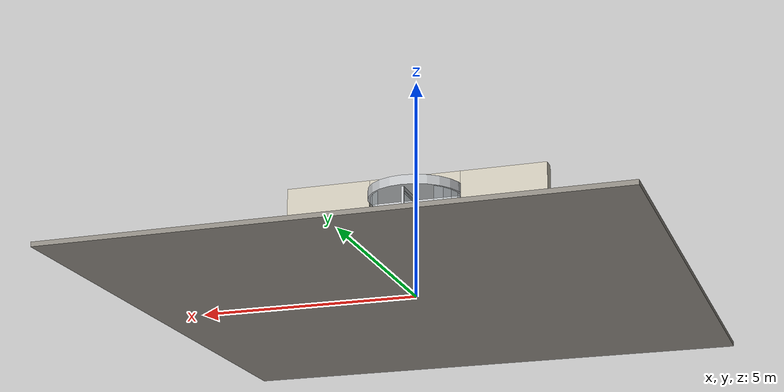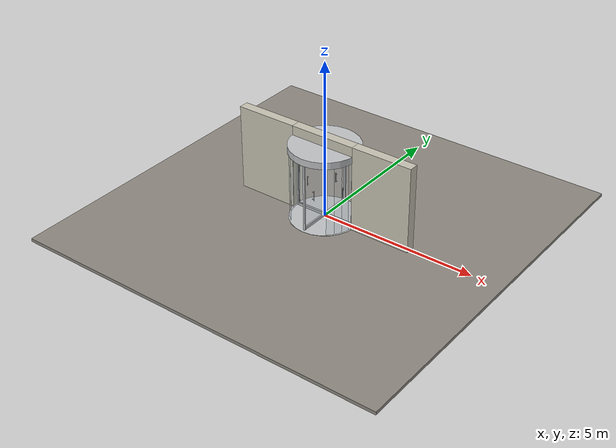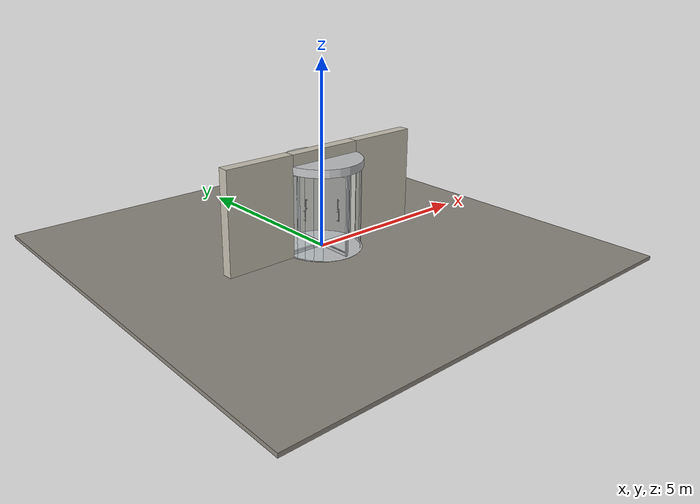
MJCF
<?xml version="1.0" ?>
<mujoco model="db0958_revolving_full">
  <compiler angle="radian" meshdir="../../hardware" texturedir="../../textures" autolimits="true" inertiafromgeom="false"/>
  <option timestep="0.002" integrator="implicitfast" cone="elliptic" impratio="10" noslip_iterations="3">
    <flag multiccd="enable"/>
  </option>
  <size memory="16M"/>
  <default>
    <geom condim="4" solref="0.005 1" solimp="0.95 0.99 0.001"/>
    <joint solreflimit="0.005 1" solimplimit="0.95 0.99 0.001"/>
    <tendon solreflimit="0.005 1"/>
    <equality solref="0.002 1"/>
  </default>
  <visual>
    <headlight ambient="0.4 0.4 0.4" diffuse="0.7 0.7 0.7" specular="0.2 0.2 0.2"/>
    <quality shadowsize="4096"/>
    <map znear="0.01" zfar="60"/>
  </visual>
  <asset>
    <material name="mat_floor" rgba="0.55 0.53 0.5 1" specular="0.2" shininess="0.15" reflectance="0"/>
    <material name="mat_wall" rgba="0.78 0.76 0.7 1" specular="0.2" shininess="0.1" reflectance="0"/>
    <material name="mat_frame" rgba="0.75 0.76 0.77 1" specular="0.8" shininess="0.65" reflectance="0.4"/>
    <material name="mat_drum_glass" rgba="0.85 0.92 0.95 0.25" specular="0.2" shininess="0.95" reflectance="0.1"/>
    <material name="mat_floor_ring" rgba="0.75 0.76 0.77 1" specular="0.8" shininess="0.65" reflectance="0.4"/>
    <material name="mat_op_stainless" rgba="0.75 0.76 0.77 1" specular="0.8" shininess="0.65" reflectance="0.4"/>
    <texture name="skybox" type="skybox" builtin="gradient" rgb1="0.6 0.7 0.85" rgb2="0.9 0.92 0.95" width="256" height="256"/>
  </asset>
  <worldbody>
    <light name="sun" pos="1.5 -2.5 4" dir="-0.3 0.5 -0.8" directional="true" diffuse="0.8 0.8 0.8" specular="0.3 0.3 0.3" castshadow="true"/>
    <light name="fill" pos="-1.5 2.5 3" dir="0.3 -0.5 -0.7" directional="true" diffuse="0.35 0.35 0.4" castshadow="false"/>
    <camera name="robot_view" pos="0 -2.906875 2.030925" xyaxes="1 0 0 0 0.26963 0.962964" fovy="52"/>
    <camera name="far_view" pos="0 2.906875 2.030925" xyaxes="-1 0 0 0 -0.26963 0.962964" fovy="52"/>
    <camera name="iso" pos="2.209225 -2.441775 2.496025" xyaxes="0.741536 0.670913 0 -0.242917 0.268487 0.932151" fovy="46"/>
    <camera name="detail_handle" pos="0.55 -1.1 1.35" xyaxes="0.975133 0.221621 0 -0.065674 0.288965 0.955084" fovy="38"/>
    <geom name="floor" type="box" size="6 6 0.05" pos="0 0 -0.05" material="mat_floor" group="0" contype="1" conaffinity="1" friction="0.8 0.005 0.0001" density="2400"/>
    <geom name="wall_left" type="box" size="0.975 0.15 1.367" pos="-2.025 0 1.367" material="mat_wall" group="0" contype="1" conaffinity="1" friction="0.6 0.005 0.0001" density="800"/>
    <geom name="wall_right" type="box" size="0.975 0.15 1.367" pos="2.025 0 1.367" material="mat_wall" group="0" contype="1" conaffinity="1" friction="0.6 0.005 0.0001" density="800"/>
    <geom name="wall_header" type="box" size="1.05 0.15 0.15" pos="0 0 2.584" material="mat_wall" group="0" contype="1" conaffinity="1" friction="0.6 0.005 0.0001" density="800"/>
    <geom name="drum_0" type="box" size="0.116444 0.006 1.1095" pos="1.013586 0.114204 1.1095" quat="0.666347 0 0 0.745642" material="mat_drum_glass" group="0" contype="1" conaffinity="1" friction="0.6 0.005 0.0001" density="2500"/>
    <geom name="drum_1" type="box" size="0.116444 0.006 1.1095" pos="0.962761 0.336885 1.1095" quat="0.578671 0 0 0.815561" material="mat_drum_glass" group="0" contype="1" conaffinity="1" friction="0.6 0.005 0.0001" density="2500"/>
    <geom name="drum_2" type="box" size="0.116444 0.006 1.1095" pos="0.863659 0.542673 1.1095" quat="0.483719 0 0 0.875223" material="mat_drum_glass" group="0" contype="1" conaffinity="1" friction="0.6 0.005 0.0001" density="2500"/>
    <geom name="drum_3" type="box" size="0.116444 0.006 1.1095" pos="0.721249 0.721249 1.1095" quat="0.382683 0 0 0.92388" material="mat_drum_glass" group="0" contype="1" conaffinity="1" friction="0.6 0.005 0.0001" density="2500"/>
    <geom name="drum_10" type="box" size="0.116444 0.006 1.1095" pos="-0.721249 0.721249 1.1095" quat="-0.382683 0 0 0.92388" material="mat_drum_glass" group="0" contype="1" conaffinity="1" friction="0.6 0.005 0.0001" density="2500"/>
    <geom name="drum_11" type="box" size="0.116444 0.006 1.1095" pos="-0.863659 0.542673 1.1095" quat="-0.483719 0 0 0.875223" material="mat_drum_glass" group="0" contype="1" conaffinity="1" friction="0.6 0.005 0.0001" density="2500"/>
    <geom name="drum_12" type="box" size="0.116444 0.006 1.1095" pos="-0.962761 0.336885 1.1095" quat="-0.578671 0 0 0.815561" material="mat_drum_glass" group="0" contype="1" conaffinity="1" friction="0.6 0.005 0.0001" density="2500"/>
    <geom name="drum_13" type="box" size="0.116444 0.006 1.1095" pos="-1.013586 0.114204 1.1095" quat="-0.666347 0 0 0.745642" material="mat_drum_glass" group="0" contype="1" conaffinity="1" friction="0.6 0.005 0.0001" density="2500"/>
    <geom name="drum_14" type="box" size="0.116444 0.006 1.1095" pos="-1.013586 -0.114204 1.1095" quat="-0.745642 0 0 0.666347" material="mat_drum_glass" group="0" contype="1" conaffinity="1" friction="0.6 0.005 0.0001" density="2500"/>
    <geom name="drum_15" type="box" size="0.116444 0.006 1.1095" pos="-0.962761 -0.336885 1.1095" quat="-0.815561 0 0 0.578671" material="mat_drum_glass" group="0" contype="1" conaffinity="1" friction="0.6 0.005 0.0001" density="2500"/>
    <geom name="drum_16" type="box" size="0.116444 0.006 1.1095" pos="-0.863659 -0.542673 1.1095" quat="-0.875223 0 0 0.483719" material="mat_drum_glass" group="0" contype="1" conaffinity="1" friction="0.6 0.005 0.0001" density="2500"/>
    <geom name="drum_17" type="box" size="0.116444 0.006 1.1095" pos="-0.721249 -0.721249 1.1095" quat="-0.92388 0 0 0.382683" material="mat_drum_glass" group="0" contype="1" conaffinity="1" friction="0.6 0.005 0.0001" density="2500"/>
    <geom name="drum_24" type="box" size="0.116444 0.006 1.1095" pos="0.721249 -0.721249 1.1095" quat="-0.92388 0 0 -0.382683" material="mat_drum_glass" group="0" contype="1" conaffinity="1" friction="0.6 0.005 0.0001" density="2500"/>
    <geom name="drum_25" type="box" size="0.116444 0.006 1.1095" pos="0.863659 -0.542673 1.1095" quat="-0.875223 0 0 -0.483719" material="mat_drum_glass" group="0" contype="1" conaffinity="1" friction="0.6 0.005 0.0001" density="2500"/>
    <geom name="drum_26" type="box" size="0.116444 0.006 1.1095" pos="0.962761 -0.336885 1.1095" quat="-0.815561 0 0 -0.578671" material="mat_drum_glass" group="0" contype="1" conaffinity="1" friction="0.6 0.005 0.0001" density="2500"/>
    <geom name="drum_27" type="box" size="0.116444 0.006 1.1095" pos="1.013586 -0.114204 1.1095" quat="-0.745642 0 0 -0.666347" material="mat_drum_glass" group="0" contype="1" conaffinity="1" friction="0.6 0.005 0.0001" density="2500"/>
    <geom name="drum_canopy" type="cylinder" size="1.08 0.1075" pos="0 0 2.3265" material="mat_frame" group="0" contype="1" conaffinity="1" friction="0.6 0.005 0.0001" density="300"/>
    <geom name="rotor_top_bearing" type="cylinder" size="0.075 0.003" pos="0 0 2.216" material="mat_frame" group="0" contype="1" conaffinity="1" friction="0.6 0.005 0.0001" density="2700"/>
    <geom name="drum_floor_ring" type="cylinder" size="1.08 0.003" pos="0 0 0.003" material="mat_floor_ring" group="1" contype="0" conaffinity="0" density="7900"/>
    <geom name="rotor_floor_pivot" type="cylinder" size="0.075 0.003" pos="0 0 0.009" material="mat_frame" group="0" contype="1" conaffinity="1" friction="0.6 0.005 0.0001" density="2700"/>
    <site name="approach_point" pos="0 -2 0" quat="1 0 0 0" size="0.05" rgba="0.2 0.9 0.2 0.5" group="4"/>
    <site name="goal_point" pos="0 2 0" quat="1 0 0 0" size="0.05" rgba="0.2 0.9 0.2 0.5" group="4"/>
    <site name="door_plane_center" pos="0 0 1.067" quat="1 0 0 0" size="0.02" rgba="0.2 0.9 0.2 0.5" group="4"/>
    <body name="rotor" pos="0 0 0">
      <inertial pos="0 0 1.113153" mass="211.248" quat="0.707107 0 0.707107 0" diaginertia="74.829940809 147.996329414 147.996329414"/>
      <joint name="rotor_hinge" type="hinge" axis="0 0 1" limited="false" damping="28" frictionloss="4.611778" armature="0.5"/>
      <geom name="rotor_shaft" type="cylinder" size="0.06 1.092" pos="0 0 1.112" material="mat_frame" group="0" contype="1" conaffinity="1" friction="0.6 0.005 0.0001" density="2700"/>
      <geom name="rotor_pintle_b" type="cylinder" size="0.03 0.008" pos="0 0 0.016" material="mat_frame" group="1" contype="0" conaffinity="0" density="2700"/>
      <geom name="rotor_pintle_t" type="cylinder" size="0.03 0.0085" pos="0 0 2.2085" material="mat_frame" group="1" contype="0" conaffinity="0" density="2700"/>
      <geom name="wing_0_glass" type="box" size="0.48 0.005 1.017" pos="0.5 0 1.117" material="mat_drum_glass" group="0" contype="1" conaffinity="1" friction="0.6 0.005 0.0001" density="2500"/>
      <geom name="wing_0_stile" type="box" size="0.02 0.03 1.092" pos="0.98 0 1.112" material="mat_frame" group="0" contype="1" conaffinity="1" friction="0.6 0.005 0.0001" density="2700"/>
      <geom name="wing_0_rail_b" type="box" size="0.48 0.03 0.04" pos="0.48 0 0.06" material="mat_frame" group="0" contype="1" conaffinity="1" friction="0.6 0.005 0.0001" density="2700"/>
      <geom name="wing_0_rail_t" type="box" size="0.48 0.03 0.04" pos="0.48 0 2.164" material="mat_frame" group="0" contype="1" conaffinity="1" friction="0.6 0.005 0.0001" density="2700"/>
      <geom name="wing_0_bar" type="capsule" size="0.012 0.15" pos="0.6 0.055 1" material="mat_op_stainless" group="0" contype="1" conaffinity="1" friction="0.7 0.01 0.0001" density="7900"/>
      <geom name="wing_0_bar_stud_d" type="cylinder" size="0.009 0.028" pos="0.6 0.031 0.88" quat="0.707107 -0.707107 0 0" material="mat_op_stainless" group="1" contype="0" conaffinity="0" density="7900"/>
      <geom name="wing_0_bar_stud_u" type="cylinder" size="0.009 0.028" pos="0.6 0.031 1.12" quat="0.707107 -0.707107 0 0" material="mat_op_stainless" group="1" contype="0" conaffinity="0" density="7900"/>
      <geom name="wing_1_glass" type="box" size="0.48 0.005 1.017" pos="0 0.5 1.117" quat="0.707107 0 0 0.707107" material="mat_drum_glass" group="0" contype="1" conaffinity="1" friction="0.6 0.005 0.0001" density="2500"/>
      <geom name="wing_1_stile" type="box" size="0.02 0.03 1.092" pos="0 0.98 1.112" quat="0.707107 0 0 0.707107" material="mat_frame" group="0" contype="1" conaffinity="1" friction="0.6 0.005 0.0001" density="2700"/>
      <geom name="wing_1_rail_b" type="box" size="0.48 0.03 0.04" pos="0 0.48 0.06" quat="0.707107 0 0 0.707107" material="mat_frame" group="0" contype="1" conaffinity="1" friction="0.6 0.005 0.0001" density="2700"/>
      <geom name="wing_1_rail_t" type="box" size="0.48 0.03 0.04" pos="0 0.48 2.164" quat="0.707107 0 0 0.707107" material="mat_frame" group="0" contype="1" conaffinity="1" friction="0.6 0.005 0.0001" density="2700"/>
      <geom name="wing_1_bar" type="capsule" size="0.012 0.15" pos="-0.055 0.6 1" material="mat_op_stainless" group="0" contype="1" conaffinity="1" friction="0.7 0.01 0.0001" density="7900"/>
      <geom name="wing_1_bar_stud_d" type="cylinder" size="0.009 0.028" pos="-0.031 0.6 0.88" quat="0.707107 0 -0.707107 0" material="mat_op_stainless" group="1" contype="0" conaffinity="0" density="7900"/>
      <geom name="wing_1_bar_stud_u" type="cylinder" size="0.009 0.028" pos="-0.031 0.6 1.12" quat="0.707107 0 -0.707107 0" material="mat_op_stainless" group="1" contype="0" conaffinity="0" density="7900"/>
      <geom name="wing_2_glass" type="box" size="0.48 0.005 1.017" pos="-0.5 0 1.117" quat="0 0 0 1" material="mat_drum_glass" group="0" contype="1" conaffinity="1" friction="0.6 0.005 0.0001" density="2500"/>
      <geom name="wing_2_stile" type="box" size="0.02 0.03 1.092" pos="-0.98 0 1.112" quat="0 0 0 1" material="mat_frame" group="0" contype="1" conaffinity="1" friction="0.6 0.005 0.0001" density="2700"/>
      <geom name="wing_2_rail_b" type="box" size="0.48 0.03 0.04" pos="-0.48 0 0.06" quat="0 0 0 1" material="mat_frame" group="0" contype="1" conaffinity="1" friction="0.6 0.005 0.0001" density="2700"/>
      <geom name="wing_2_rail_t" type="box" size="0.48 0.03 0.04" pos="-0.48 0 2.164" quat="0 0 0 1" material="mat_frame" group="0" contype="1" conaffinity="1" friction="0.6 0.005 0.0001" density="2700"/>
      <geom name="wing_2_bar" type="capsule" size="0.012 0.15" pos="-0.6 -0.055 1" material="mat_op_stainless" group="0" contype="1" conaffinity="1" friction="0.7 0.01 0.0001" density="7900"/>
      <geom name="wing_2_bar_stud_d" type="cylinder" size="0.009 0.028" pos="-0.6 -0.031 0.88" quat="0.707107 0.707107 0 0" material="mat_op_stainless" group="1" contype="0" conaffinity="0" density="7900"/>
      <geom name="wing_2_bar_stud_u" type="cylinder" size="0.009 0.028" pos="-0.6 -0.031 1.12" quat="0.707107 0.707107 0 0" material="mat_op_stainless" group="1" contype="0" conaffinity="0" density="7900"/>
      <geom name="wing_3_glass" type="box" size="0.48 0.005 1.017" pos="0 -0.5 1.117" quat="-0.707107 0 0 0.707107" material="mat_drum_glass" group="0" contype="1" conaffinity="1" friction="0.6 0.005 0.0001" density="2500"/>
      <geom name="wing_3_stile" type="box" size="0.02 0.03 1.092" pos="0 -0.98 1.112" quat="-0.707107 0 0 0.707107" material="mat_frame" group="0" contype="1" conaffinity="1" friction="0.6 0.005 0.0001" density="2700"/>
      <geom name="wing_3_rail_b" type="box" size="0.48 0.03 0.04" pos="0 -0.48 0.06" quat="-0.707107 0 0 0.707107" material="mat_frame" group="0" contype="1" conaffinity="1" friction="0.6 0.005 0.0001" density="2700"/>
      <geom name="wing_3_rail_t" type="box" size="0.48 0.03 0.04" pos="0 -0.48 2.164" quat="-0.707107 0 0 0.707107" material="mat_frame" group="0" contype="1" conaffinity="1" friction="0.6 0.005 0.0001" density="2700"/>
      <geom name="wing_3_bar" type="capsule" size="0.012 0.15" pos="0.055 -0.6 1" material="mat_op_stainless" group="0" contype="1" conaffinity="1" friction="0.7 0.01 0.0001" density="7900"/>
      <geom name="wing_3_bar_stud_d" type="cylinder" size="0.009 0.028" pos="0.031 -0.6 0.88" quat="0.707107 0 0.707107 0" material="mat_op_stainless" group="1" contype="0" conaffinity="0" density="7900"/>
      <geom name="wing_3_bar_stud_u" type="cylinder" size="0.009 0.028" pos="0.031 -0.6 1.12" quat="0.707107 0 0.707107 0" material="mat_op_stainless" group="1" contype="0" conaffinity="0" density="7900"/>
      <site name="wing_0_push" pos="0.6 0.055 1" quat="1 0 0 0" size="0.015" rgba="0.2 0.9 0.2 0.5" group="4"/>
      <site name="wing_1_push" pos="-0.055 0.6 1" quat="1 0 0 0" size="0.015" rgba="0.2 0.9 0.2 0.5" group="4"/>
      <site name="wing_2_push" pos="-0.6 -0.055 1" quat="1 0 0 0" size="0.015" rgba="0.2 0.9 0.2 0.5" group="4"/>
      <site name="wing_3_push" pos="0.055 -0.6 1" quat="1 0 0 0" size="0.015" rgba="0.2 0.9 0.2 0.5" group="4"/>
    </body>
  </worldbody>
  <sensor>
    <jointpos name="rotor_hinge_pos" joint="rotor_hinge"/>
    <jointvel name="rotor_hinge_vel" joint="rotor_hinge"/>
  </sensor>
</mujoco>
